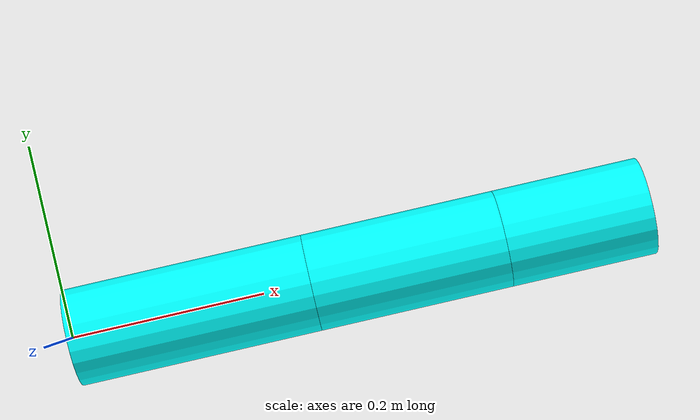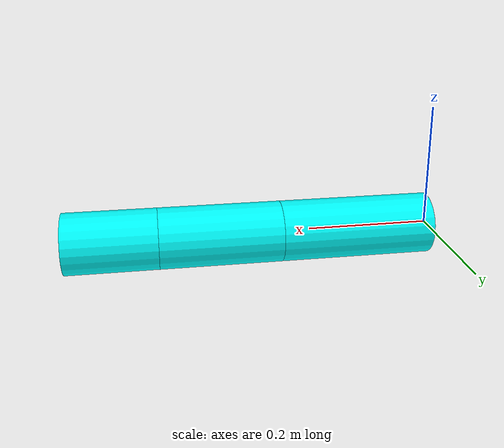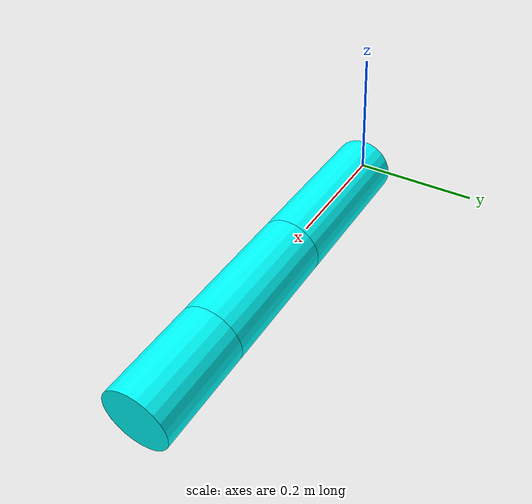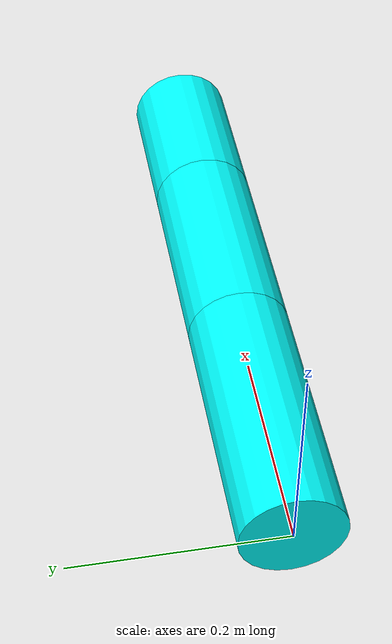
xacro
<?xml version="1.0"?>
<robot xmlns:xacro="http://www.ros.org/wiki/xacro" name="berry_good_bot">
    <xacro:arg name="initial_positions_file" default="initial_positions.yaml" />

    <!-- Import berry_good_bot urdf file -->
    <xacro:include filename="$(find strawberry_description)/urdf/berry_good_bot_sampleURDF.xacro" />

    <!-- Import control_xacro -->
    <xacro:include filename="berry_good_bot.ros2_control.xacro" />

    <xacro:berry_good_bot_ros2_control name="FakeSystem" initial_positions_file="$(arg initial_positions_file)"/>

</robot>

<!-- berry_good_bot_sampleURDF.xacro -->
<robot xmlns:xacro="http://www.ros.org/wiki/xacro" name="berry_good_bot">

  <!-- ===== 파라미터 ===== -->
  <xacro:property name="link_radius"    value="0.05"/>
  <xacro:property name="L1"             value="0.25"/>
  <xacro:property name="L2"             value="0.20"/>
  <xacro:property name="L3"             value="0.15"/>

  <!-- ===== 간단 원통 링크 (축 = +X) ===== -->
  <xacro:macro name="cyl_link" params="name length radius">
    <link name="${name}">
      <!-- ◀ 원통 중심을 +X 쪽으로, 축을 X에 맞춰 Y축(+90°) 회전 -->
      <inertial>
        <origin xyz="${length/2} 0 0" rpy="0 1.57079632679 0"/>
        <mass value="0.4"/>
        <inertia ixx="0.002" iyy="0.002" izz="0.001"
                 ixy="0"   ixz="0"   iyz="0"/>
      </inertial>
      <visual>
        <origin xyz="${length/2} 0 0" rpy="0 1.57079632679 0"/>
        <geometry><cylinder length="${length}" radius="${radius}"/></geometry>
        <material name="Cyan"><color rgba="0 1 1 1"/></material>
      </visual>
      <collision>
        <origin xyz="${length/2} 0 0" rpy="0 1.57079632679 0"/>
        <geometry><cylinder length="${length}" radius="${radius}"/></geometry>
      </collision>
    </link>
  </xacro:macro>

  <!-- ===== 링크 & 조인트 체인 ===== -->
  <link name="base_link"/>

  <!-- Z축 선형 스크류 -->
  <link name="screw_link"/>
  <joint name="screw_joint" type="prismatic">
    <parent link="base_link"/>
    <child  link="screw_link"/>
    <origin xyz="0 0 0" rpy="0 0 0"/>
    <axis xyz="0 0 1"/>
    <limit lower="0.0" upper="1.0" velocity="0.3" effort="100.0"/>
  </joint>

  <!-- 3-DOF 팔 -->
  <xacro:cyl_link name="link1" length="${L1}" radius="${link_radius}"/>
  <joint name="joint1" type="revolute">
    <parent link="screw_link"/>
    <child  link="link1"/>
    <origin xyz="0 0 0" rpy="0 0 0"/>
    <axis  xyz="0 0 1"/>
    <limit lower="-${pi}" upper="${pi}" velocity="1.5" effort="50.0"/>
  </joint>

  <xacro:cyl_link name="link2" length="${L2}" radius="${link_radius}"/>
  <joint name="joint2" type="revolute">
    <parent link="link1"/>
    <child  link="link2"/>
    <origin xyz="${L1} 0 0" rpy="0 0 0"/>
    <axis  xyz="0 0 1"/>
    <limit lower="-${pi}" upper="${pi}" velocity="1.5" effort="40.0"/>
  </joint>

  <xacro:cyl_link name="link3" length="${L3}" radius="${link_radius}"/>
  <joint name="joint3" type="revolute">
    <parent link="link2"/>
    <child  link="link3"/>
    <origin xyz="${L2} 0 0" rpy="0 0 0"/>
    <axis  xyz="0 0 1"/>
    <limit lower="-${pi}" upper="${pi}" velocity="2.0" effort="30.0"/>
  </joint>

  <!-- EEF 축 회전 -->
  <link  name="wrist_link"/>
  <joint name="wrist_roll_joint" type="continuous">
    <parent link="link3"/>
    <child  link="wrist_link"/>
    <origin xyz="${L3} 0 0" rpy="0 0 0"/>
    <axis  xyz="1 0 0"/>
    <limit effort="10.0" velocity="2.5"/>
  </joint>

  <!-- 그리퍼 -->
  <link  name="gripper_base"/>
  <joint name="gripper_joint" type="prismatic">
    <parent link="wrist_link"/>
    <child  link="gripper_base"/>
    <origin xyz="0 0 0" rpy="0 0 0"/>
    <axis  xyz="0 1 0"/>
    <limit lower="0.0" upper="0.04" velocity="0.02" effort="20.0"/>
  </joint>

  <!-- 작업 좌표계 -->
  <link  name="tool0"/>
  <joint name="tool0_fixed" type="fixed">
    <parent link="gripper_base"/>
    <child  link="tool0"/>
    <origin xyz="0 0 0.05" rpy="0 0 0"/>
  </joint>

</robot>
